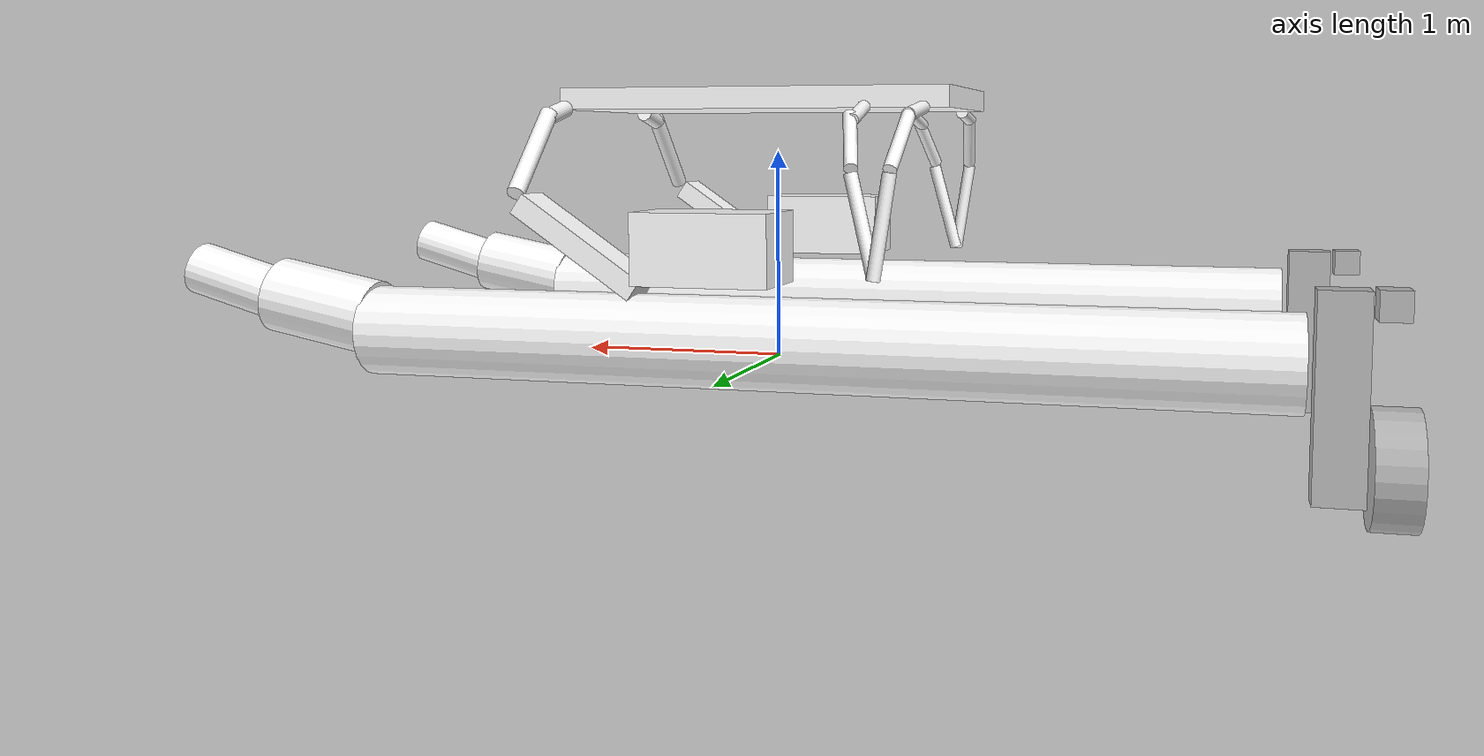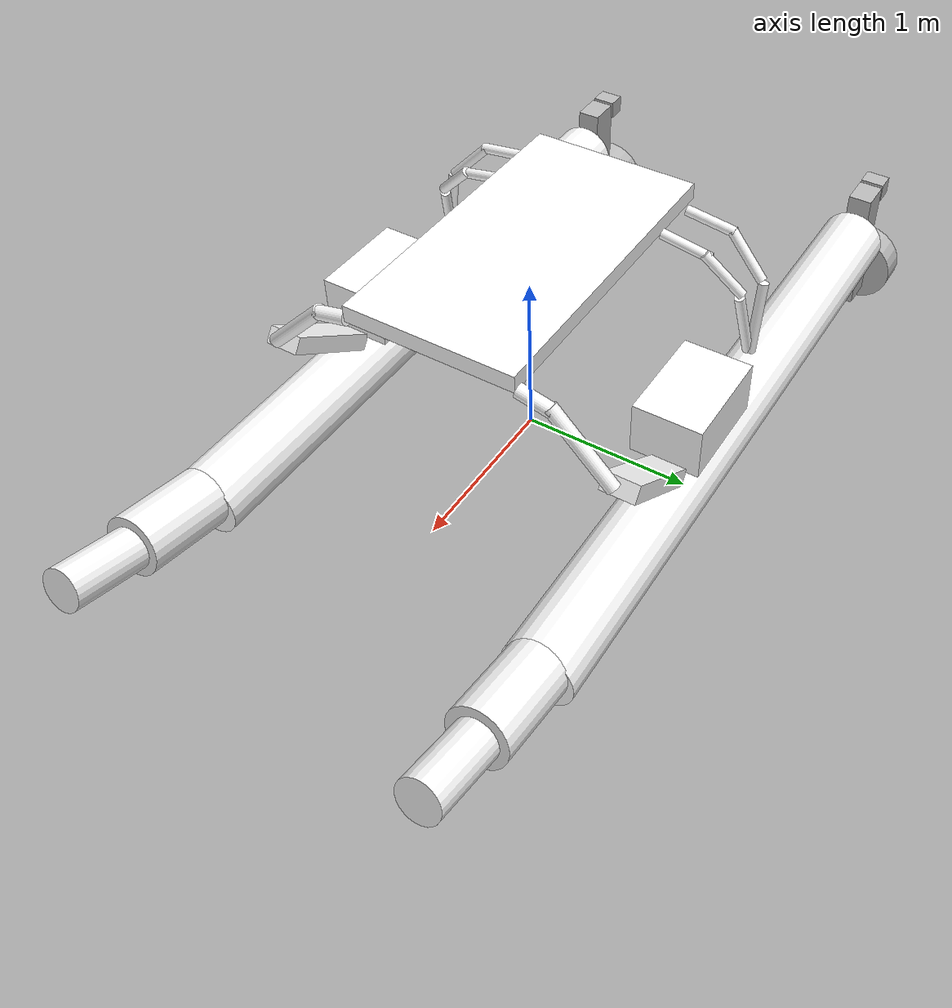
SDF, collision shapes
<?xml version='1.0' encoding='utf-8'?>
<sdf version="1.11">
  <model name="WAM-V">
    <link name="wamv/base_link">
      <inertial>
        <pose>0 0 0.1242290748898679 0 0 0</pose>
        <mass>227</mass>
        <inertia>
          <ixx>181.419798421439</ixx>
          <ixy>0</ixy>
          <ixz>0</ixz>
          <iyy>408.20313175477253</iyy>
          <iyz>0</iyz>
          <izz>495.03666666666658</izz>
        </inertia>
      </inertial>
      <collision name="wamv/base_link_fixed_joint_lump__left_float_collision">
        <pose>-0.40000000000000002 1.03 0.20000000000000001 0 1.5707963267948966 0</pose>
        <geometry>
          <cylinder>
            <length>4</length>
            <radius>0.20000000000000001</radius>
          </cylinder>
        </geometry>
      </collision>
      <collision name="wamv/base_link_fixed_joint_lump__left_mid_float_collision_1">
        <pose>1.8500000000000001 1.03 0.29999999999999999 0 1.3799999999999997 0</pose>
        <geometry>
          <cylinder>
            <length>0.5</length>
            <radius>0.17000000000000001</radius>
          </cylinder>
        </geometry>
      </collision>
      <collision name="wamv/base_link_fixed_joint_lump__left_front_float_collision_2">
        <pose>2.2999999999999998 1.03 0.40000000000000002 0 1.3 0</pose>
        <geometry>
          <cylinder>
            <length>0.45000000000000001</length>
            <radius>0.12</radius>
          </cylinder>
        </geometry>
      </collision>
      <collision name="wamv/base_link_fixed_joint_lump__front_left_beam_lower_collision_3">
        <pose>0.90000000000000002 0.84999999999999998 1 0.78000000000000003 0 0</pose>
        <geometry>
          <cylinder>
            <length>0.5</length>
            <radius>0.040000000000000001</radius>
          </cylinder>
        </geometry>
      </collision>
      <collision name="wamv/base_link_fixed_joint_lump__front_left_beam_upper_collision_4">
        <pose>0.90000000000000002 0.59999999999999998 1.1799999999999999 1.3500000000000001 0 0</pose>
        <geometry>
          <cylinder>
            <length>0.20000000000000001</length>
            <radius>0.040000000000000001</radius>
          </cylinder>
        </geometry>
      </collision>
      <collision name="wamv/base_link_fixed_joint_lump__mid_left_beam_lower_collision_5">
        <pose>-0.65000000000000002 0.98999999999999999 0.69999999999999996 0.099999999999999978 0.25000000000000006 0</pose>
        <geometry>
          <cylinder>
            <length>0.45000000000000001</length>
            <radius>0.029999999999999999</radius>
          </cylinder>
        </geometry>
      </collision>
      <collision name="wamv/base_link_fixed_joint_lump__mid_left_beam_medium_collision_6">
        <pose>-0.56999999999999995 0.87 1.05 0.75000000000000033 0.25000000000000017 0</pose>
        <geometry>
          <cylinder>
            <length>0.32000000000000001</length>
            <radius>0.029999999999999999</radius>
          </cylinder>
        </geometry>
      </collision>
      <collision name="wamv/base_link_fixed_joint_lump__mid_left_beam_upper_collision_7">
        <pose>-0.55000000000000004 0.65000000000000002 1.1699999999999999 1.3500000000000001 0.25000000000000011 0</pose>
        <geometry>
          <cylinder>
            <length>0.29999999999999999</length>
            <radius>0.029999999999999999</radius>
          </cylinder>
        </geometry>
      </collision>
      <collision name="wamv/base_link_fixed_joint_lump__rear_left_beam_lower_collision_8">
        <pose>-0.73999999999999999 1.03 0.69999999999999996 0 -0.14999999999999999 0</pose>
        <geometry>
          <cylinder>
            <length>0.45000000000000001</length>
            <radius>0.029999999999999999</radius>
          </cylinder>
        </geometry>
      </collision>
      <collision name="wamv/base_link_fixed_joint_lump__rear_left_beam_medium_collision_9">
        <pose>-0.79000000000000004 0.91000000000000003 1.05 0.75000000000000022 -0.14999999999999999 -1.4035390109491176e-17</pose>
        <geometry>
          <cylinder>
            <length>0.32000000000000001</length>
            <radius>0.029999999999999999</radius>
          </cylinder>
        </geometry>
      </collision>
      <collision name="wamv/base_link_fixed_joint_lump__rear_left_beam_upper_collision_10">
        <pose>-0.81000000000000005 0.67000000000000004 1.1799999999999999 1.45 -0.14999999999999999 0</pose>
        <geometry>
          <cylinder>
            <length>0.29999999999999999</length>
            <radius>0.029999999999999999</radius>
          </cylinder>
        </geometry>
      </collision>
      <collision name="wamv/base_link_fixed_joint_lump__left_joint_collision_11">
        <pose>0.57999999999999996 1.03 0.59999999999999998 0 -0.59999999999999987 0</pose>
        <geometry>
          <box>
            <size>0.65000000000000002 0.20000000000000001 0.10000000000000001</size>
          </box>
        </geometry>
      </collision>
      <collision name="wamv/base_link_fixed_joint_lump__right_float_collision_12">
        <pose>-0.40000000000000002 -1.03 0.20000000000000001 0 1.5707963267948966 0</pose>
        <geometry>
          <cylinder>
            <length>4</length>
            <radius>0.20000000000000001</radius>
          </cylinder>
        </geometry>
      </collision>
      <collision name="wamv/base_link_fixed_joint_lump__right_mid_float_collision_13">
        <pose>1.8500000000000001 -1.03 0.29999999999999999 0 1.3799999999999997 0</pose>
        <geometry>
          <cylinder>
            <length>0.5</length>
            <radius>0.17000000000000001</radius>
          </cylinder>
        </geometry>
      </collision>
      <collision name="wamv/base_link_fixed_joint_lump__right_front_float_collision_14">
        <pose>2.2999999999999998 -1.03 0.40000000000000002 0 1.3 0</pose>
        <geometry>
          <cylinder>
            <length>0.45000000000000001</length>
            <radius>0.12</radius>
          </cylinder>
        </geometry>
      </collision>
      <collision name="wamv/base_link_fixed_joint_lump__front_right_beam_lower_collision_15">
        <pose>0.90000000000000002 -0.84999999999999998 1 -0.78000000000000003 0 0</pose>
        <geometry>
          <cylinder>
            <length>0.5</length>
            <radius>0.040000000000000001</radius>
          </cylinder>
        </geometry>
      </collision>
      <collision name="wamv/base_link_fixed_joint_lump__front_right_beam_upper_collision_16">
        <pose>0.90000000000000002 -0.59999999999999998 1.1799999999999999 -1.3500000000000001 0 0</pose>
        <geometry>
          <cylinder>
            <length>0.20000000000000001</length>
            <radius>0.040000000000000001</radius>
          </cylinder>
        </geometry>
      </collision>
      <collision name="wamv/base_link_fixed_joint_lump__mid_right_beam_lower_collision_17">
        <pose>-0.65000000000000002 -0.98999999999999999 0.69999999999999996 -0.099999999999999978 0.25000000000000006 0</pose>
        <geometry>
          <cylinder>
            <length>0.45000000000000001</length>
            <radius>0.029999999999999999</radius>
          </cylinder>
        </geometry>
      </collision>
      <collision name="wamv/base_link_fixed_joint_lump__mid_right_beam_medium_collision_18">
        <pose>-0.56999999999999995 -0.87 1.05 -0.75000000000000033 0.25000000000000017 0</pose>
        <geometry>
          <cylinder>
            <length>0.32000000000000001</length>
            <radius>0.029999999999999999</radius>
          </cylinder>
        </geometry>
      </collision>
      <collision name="wamv/base_link_fixed_joint_lump__mid_right_beam_upper_collision_19">
        <pose>-0.55000000000000004 -0.65000000000000002 1.1699999999999999 -1.3500000000000001 0.25000000000000011 0</pose>
        <geometry>
          <cylinder>
            <length>0.29999999999999999</length>
            <radius>0.029999999999999999</radius>
          </cylinder>
        </geometry>
      </collision>
      <collision name="wamv/base_link_fixed_joint_lump__rear_right_beam_lower_collision_20">
        <pose>-0.73999999999999999 -1.03 0.69999999999999996 0 -0.14999999999999999 0</pose>
        <geometry>
          <cylinder>
            <length>0.45000000000000001</length>
            <radius>0.029999999999999999</radius>
          </cylinder>
        </geometry>
      </collision>
      <collision name="wamv/base_link_fixed_joint_lump__rear_right_beam_medium_collision_21">
        <pose>-0.79000000000000004 -0.91000000000000003 1.05 -0.75000000000000022 -0.14999999999999999 1.4035390109491176e-17</pose>
        <geometry>
          <cylinder>
            <length>0.32000000000000001</length>
            <radius>0.029999999999999999</radius>
          </cylinder>
        </geometry>
      </collision>
      <collision name="wamv/base_link_fixed_joint_lump__rear_right_beam_upper_collision_22">
        <pose>-0.81000000000000005 -0.67000000000000004 1.1799999999999999 -1.45 -0.14999999999999999 0</pose>
        <geometry>
          <cylinder>
            <length>0.29999999999999999</length>
            <radius>0.029999999999999999</radius>
          </cylinder>
        </geometry>
      </collision>
      <collision name="wamv/base_link_fixed_joint_lump__right_joint_collision_23">
        <pose>0.57999999999999996 -1.03 0.59999999999999998 0 -0.59999999999999987 0</pose>
        <geometry>
          <box>
            <size>0.65000000000000002 0.20000000000000001 0.10000000000000001</size>
          </box>
        </geometry>
      </collision>
      <collision name="wamv/base_link_fixed_joint_lump__top_base_collision_24">
        <pose>0 0 1.25 0 0 0</pose>
        <geometry>
          <box>
            <size>1.8500000000000001 1 0.10000000000000001</size>
          </box>
        </geometry>
      </collision>
      <collision name="wamv/base_link_fixed_joint_lump__left_battery_collision_collision_25">
        <pose>0 1 0.59999999999999998 0 0 0</pose>
        <geometry>
          <box>
            <size>0.59999999999999998 0.40000000000000002 0.31</size>
          </box>
        </geometry>
      </collision>
      <collision name="wamv/base_link_fixed_joint_lump__right_battery_collision_collision_26">
        <pose>0 -1 0.59999999999999998 0 0 0</pose>
        <geometry>
          <box>
            <size>0.59999999999999998 0.40000000000000002 0.31</size>
          </box>
        </geometry>
      </collision>
      <visual name="wamv/base_link_visual">
        <pose>0 0 0 0 0 0</pose>
        <geometry>
          <mesh>
            <scale>1 1 1</scale>
            <uri>model://wamv_description/models/WAM-V-Base/mesh/WAM-V-Base.dae</uri>
          </mesh>
        </geometry>
        <material>
          <diffuse>1 1 1 1</diffuse>
          <specular>1 1 1 1</specular>
          <pbr>
            <metal>
              <albedo_map>model://wamv_description/models/WAM-V-Base/mesh/WAM-V_Albedo.png</albedo_map>
              <normal_map>model://wamv_description/models/WAM-V-Base/mesh/WAM-V_Normal.png</normal_map>
              <roughness_map>model://wamv_description/models/WAM-V-Base/mesh/WAM-V_Roughness.png</roughness_map>
              <metalness_map>model://wamv_description/models/WAM-V-Base/mesh/WAM-V_Metalness.png</metalness_map>
            </metal>
          </pbr>
        </material>
      </visual>
      <visual name="wamv/base_link_fixed_joint_lump__wamv/left_battery_link_visual_1">
        <pose>0 -0.03000000000000003 0 0 0 0</pose>
        <geometry>
          <mesh>
            <scale>1 1 1</scale>
            <uri>model://vrx_gazebo/models/battery/mesh/battery.dae</uri>
          </mesh>
        </geometry>
        <material>
          <diffuse>1 1 1 1</diffuse>
          <specular>1 1 1 1</specular>
          <pbr>
            <metal>
              <albedo_map>model://vrx_gazebo/models/battery/mesh/battery_Albedo.png</albedo_map>
              <normal_map>model://vrx_gazebo/models/battery/mesh/battery_Normal.png</normal_map>
              <roughness_map>model://vrx_gazebo/models/battery/mesh/battery_Roughness.png</roughness_map>
              <metalness_map>model://vrx_gazebo/models/battery/mesh/battery_Metalness.png</metalness_map>
            </metal>
          </pbr>
        </material>
      </visual>
      <visual name="wamv/base_link_fixed_joint_lump__wamv/right_battery_link_visual_2">
        <pose>0 -2.0299999999999998 0 0 0 0</pose>
        <geometry>
          <mesh>
            <scale>1 1 1</scale>
            <uri>model://vrx_gazebo/models/battery/mesh/battery.dae</uri>
          </mesh>
        </geometry>
        <material>
          <diffuse>1 1 1 1</diffuse>
          <specular>1 1 1 1</specular>
          <pbr>
            <metal>
              <albedo_map>model://vrx_gazebo/models/battery/mesh/battery_Albedo.png</albedo_map>
              <normal_map>model://vrx_gazebo/models/battery/mesh/battery_Normal.png</normal_map>
              <roughness_map>model://vrx_gazebo/models/battery/mesh/battery_Roughness.png</roughness_map>
              <metalness_map>model://vrx_gazebo/models/battery/mesh/battery_Metalness.png</metalness_map>
            </metal>
          </pbr>
        </material>
      </visual>
      <sensor name="contact_sensor" type="contact">
        <contact>
          <collision>wamv/base_link_fixed_joint_lump__top_base_collision_24</collision>
          <collision>wamv/base_link_fixed_joint_lump__left_float_collision</collision>
          <collision>wamv/base_link_fixed_joint_lump__left_mid_float_collision_1</collision>
          <collision>wamv/base_link_fixed_joint_lump__left_front_float_collision_2</collision>
          <collision>wamv/base_link_fixed_joint_lump__right_float_collision_12</collision>
          <collision>wamv/base_link_fixed_joint_lump__right_mid_float_collision_13</collision>
          <collision>wamv/base_link_fixed_joint_lump__right_front_float_collision_14</collision>
          <topic>/vrx/contacts</topic>
        </contact>
        <always_on>true</always_on>
        <update_rate>5</update_rate>
      </sensor>
    <sensor name="imu_sensor" type="imu"><pose degrees="true">0 0 0 180 0 0</pose><always_on>1</always_on><update_rate>250</update_rate></sensor>
    <sensor name="navsat_sensor" type="navsat">
      <always_on>1</always_on>
      <update_rate>10</update_rate>
      <navsat>
        <position_sensing>
          <horizontal>
            <noise type="gaussian">
              <mean>0.0</mean>
              <stddev>0.000027</stddev>
            </noise>
          </horizontal>
          <vertical>
            <noise type="gaussian">
              <mean>0.0</mean>
              <stddev>4.0</stddev>
            </noise>
          </vertical>
        </position_sensing>
      </navsat>
    </sensor>
  </link>
    <joint name="wamv/left_chassis_engine_joint" type="revolute">
      <pose relative_to="wamv/base_link">-2.3737759999999999 1.0271349999999999 0.31823699999999999 0 0 0</pose>
      <parent>wamv/base_link</parent>
      <child>wamv/left_engine_link</child>
      <axis>
        <xyz>0 0 1</xyz>
        <limit>
          <lower>-3.1415926535897931</lower>
          <upper>3.1415926535897931</upper>
          <effort>10</effort>
          <velocity>10</velocity>
        </limit>
        <dynamics>
          <spring_reference>0</spring_reference>
          <spring_stiffness>0</spring_stiffness>
        </dynamics>
      </axis>
    </joint>
    <link name="wamv/left_engine_link">
      <pose relative_to="wamv/left_chassis_engine_joint">0 0 0 0 0 0</pose>
      <inertial>
        <pose>0 0 0 0 0 0</pose>
        <mass>15</mass>
        <inertia>
          <ixx>0.88924499999999995</ixx>
          <ixy>0</ixy>
          <ixz>0</ixz>
          <iyy>0.91112499999999996</iyy>
          <iyz>0</iyz>
          <izz>0.078125</izz>
        </inertia>
      </inertial>
      <collision name="wamv/left_engine_link_fixed_joint_lump__left_engine_vertical_axis_collision_collision">
        <pose>-0.16 0 -0.23999999999999999 0 0 0</pose>
        <geometry>
          <box>
            <size>0.20000000000000001 0.14999999999999999 0.82999999999999996</size>
          </box>
        </geometry>
      </collision>
      <collision name="wamv/left_engine_link_fixed_joint_lump__left_engine_rear_end_collision_collision_1">
        <pose>-0.34000000000000002 0 0.12 0 0 0</pose>
        <geometry>
          <box>
            <size>0.12 0.14999999999999999 0.12</size>
          </box>
        </geometry>
      </collision>
      <visual name="wamv/left_engine_link_visual">
        <pose>0 0 0 0 0 0</pose>
        <geometry>
          <mesh>
            <scale>1 1 1</scale>
            <uri>model://wamv_description/models/engine/mesh/engine.dae</uri>
          </mesh>
        </geometry>
      </visual>
    </link>
    <joint name="wamv/left_engine_propeller_joint" type="revolute">
      <pose relative_to="wamv/left_engine_link">-0.27815600000000001 0 -0.50937100000000002 0 0 0</pose>
      <parent>wamv/left_engine_link</parent>
      <child>wamv/left_propeller_link</child>
      <axis>
        <xyz>1 0 0</xyz>
        <limit>
          <effort>10000</effort>
          <velocity>1000</velocity>
          <lower>-inf</lower>
          <upper>inf</upper>
        </limit>
        <dynamics>
          <damping>0.050000000000000003</damping>
          <friction>0.050000000000000003</friction>
          <spring_reference>0</spring_reference>
          <spring_stiffness>0</spring_stiffness>
        </dynamics>
      </axis>
    </joint>
    <link name="wamv/left_propeller_link">
      <pose relative_to="wamv/left_engine_propeller_joint">0 0 0 0 0 0</pose>
      <inertial>
        <pose>0 0 0 0 0 0</pose>
        <mass>0.5</mass>
        <inertia>
          <ixx>0.0085450000000000005</ixx>
          <ixy>0</ixy>
          <ixz>0</ixz>
          <iyy>0.0085450000000000005</iyy>
          <iyz>0</iyz>
          <izz>0.0144</izz>
        </inertia>
      </inertial>
      <collision name="wamv/left_propeller_link_fixed_joint_lump__left_propeller_collision_collision">
        <pose>-0.080000000000000002 0 0 0 1.5707963267948966 0</pose>
        <geometry>
          <cylinder>
            <length>0.17999999999999999</length>
            <radius>0.23999999999999999</radius>
          </cylinder>
        </geometry>
      </collision>
      <visual name="wamv/left_propeller_link_visual">
        <pose>0 0 0 0 0 0</pose>
        <geometry>
          <mesh>
            <scale>1 1 1</scale>
            <uri>model://wamv_description/models/propeller/mesh/propeller.dae</uri>
          </mesh>
        </geometry>
      </visual>
    </link>
    <joint name="wamv/right_chassis_engine_joint" type="revolute">
      <pose relative_to="wamv/base_link">-2.3737759999999999 -1.0271349999999999 0.31823699999999999 0 0 0</pose>
      <parent>wamv/base_link</parent>
      <child>wamv/right_engine_link</child>
      <axis>
        <xyz>0 0 1</xyz>
        <limit>
          <lower>-3.1415926535897931</lower>
          <upper>3.1415926535897931</upper>
          <effort>10</effort>
          <velocity>10</velocity>
        </limit>
        <dynamics>
          <spring_reference>0</spring_reference>
          <spring_stiffness>0</spring_stiffness>
        </dynamics>
      </axis>
    </joint>
    <link name="wamv/right_engine_link">
      <pose relative_to="wamv/right_chassis_engine_joint">0 0 0 0 0 0</pose>
      <inertial>
        <pose>0 0 0 0 0 0</pose>
        <mass>15</mass>
        <inertia>
          <ixx>0.88924499999999995</ixx>
          <ixy>0</ixy>
          <ixz>0</ixz>
          <iyy>0.91112499999999996</iyy>
          <iyz>0</iyz>
          <izz>0.078125</izz>
        </inertia>
      </inertial>
      <collision name="wamv/right_engine_link_fixed_joint_lump__right_engine_vertical_axis_collision_collision">
        <pose>-0.16 0 -0.23999999999999999 0 0 0</pose>
        <geometry>
          <box>
            <size>0.20000000000000001 0.14999999999999999 0.82999999999999996</size>
          </box>
        </geometry>
      </collision>
      <collision name="wamv/right_engine_link_fixed_joint_lump__right_engine_rear_end_collision_collision_1">
        <pose>-0.34000000000000002 0 0.12 0 0 0</pose>
        <geometry>
          <box>
            <size>0.12 0.14999999999999999 0.12</size>
          </box>
        </geometry>
      </collision>
      <visual name="wamv/right_engine_link_visual">
        <pose>0 0 0 0 0 0</pose>
        <geometry>
          <mesh>
            <scale>1 1 1</scale>
            <uri>model://wamv_description/models/engine/mesh/engine.dae</uri>
          </mesh>
        </geometry>
      </visual>
    </link>
    <joint name="wamv/right_engine_propeller_joint" type="revolute">
      <pose relative_to="wamv/right_engine_link">-0.27815600000000001 0 -0.50937100000000002 0 0 0</pose>
      <parent>wamv/right_engine_link</parent>
      <child>wamv/right_propeller_link</child>
      <axis>
        <xyz>1 0 0</xyz>
        <limit>
          <effort>10000</effort>
          <velocity>1000</velocity>
          <lower>-inf</lower>
          <upper>inf</upper>
        </limit>
        <dynamics>
          <damping>0.050000000000000003</damping>
          <friction>0.050000000000000003</friction>
          <spring_reference>0</spring_reference>
          <spring_stiffness>0</spring_stiffness>
        </dynamics>
      </axis>
    </joint>
    <link name="wamv/right_propeller_link">
      <pose relative_to="wamv/right_engine_propeller_joint">0 0 0 0 0 0</pose>
      <inertial>
        <pose>0 0 0 0 0 0</pose>
        <mass>0.5</mass>
        <inertia>
          <ixx>0.0085450000000000005</ixx>
          <ixy>0</ixy>
          <ixz>0</ixz>
          <iyy>0.0085450000000000005</iyy>
          <iyz>0</iyz>
          <izz>0.0144</izz>
        </inertia>
      </inertial>
      <collision name="wamv/right_propeller_link_fixed_joint_lump__right_propeller_collision_collision">
        <pose>-0.080000000000000002 0 0 0 1.5707963267948966 0</pose>
        <geometry>
          <cylinder>
            <length>0.17999999999999999</length>
            <radius>0.23999999999999999</radius>
          </cylinder>
        </geometry>
      </collision>
      <visual name="wamv/right_propeller_link_visual">
        <pose>0 0 0 0 0 0</pose>
        <geometry>
          <mesh>
            <scale>1 1 1</scale>
            <uri>model://wamv_description/models/propeller/mesh/propeller.dae</uri>
          </mesh>
        </geometry>
      </visual>
    </link>
    <enable_wind>true</enable_wind>
    <plugin name="gz::sim::systems::Thruster" filename="gz-sim-thruster-system">
      <joint_name>wamv/left_engine_propeller_joint</joint_name>
      <thrust_coefficient>0.004422</thrust_coefficient>
      <fluid_density>1000</fluid_density>
      <propeller_diameter>0.2</propeller_diameter>
      <velocity_control>false</velocity_control>
      <max_thrust_cmd>2353.53383667818</max_thrust_cmd>
      <namespace>wamv</namespace>
      <topic>thrusters/left/thrust</topic>
      <name>left</name>
    </plugin>
    <plugin name="gz::sim::systems::JointPositionController" filename="gz-sim-joint-position-controller-system">
      <joint_name>wamv/left_chassis_engine_joint</joint_name>
      <use_velocity_commands>true</use_velocity_commands>
      <topic>wamv/thrusters/left/pos</topic>
      <name>left</name>
    </plugin>
    <plugin name="gz::sim::systems::Thruster" filename="gz-sim-thruster-system">
      <joint_name>wamv/right_engine_propeller_joint</joint_name>
      <thrust_coefficient>0.004422</thrust_coefficient>
      <fluid_density>1000</fluid_density>
      <propeller_diameter>0.2</propeller_diameter>
      <velocity_control>false</velocity_control>
      <max_thrust_cmd>2353.53383667818</max_thrust_cmd>
      <namespace>wamv</namespace>
      <topic>thrusters/right/thrust</topic>
      <name>right</name>
    </plugin>
    <plugin name="gz::sim::systems::JointPositionController" filename="gz-sim-joint-position-controller-system">
      <joint_name>wamv/right_chassis_engine_joint</joint_name>
      <use_velocity_commands>true</use_velocity_commands>
      <topic>wamv/thrusters/right/pos</topic>
      <name>right</name>
    </plugin>
    <plugin name="vrx::Surface" filename="libSurface.so">
      <link_name>wamv/base_link</link_name>
      <hull_length>4.9</hull_length>
      <hull_radius>0.213</hull_radius>
      <fluid_level>0</fluid_level>
      <points>
        <point>0.6 1.03 0</point>
        <point>-1.4 1.03 0</point>
      </points>
      <wavefield>
        <topic>/vrx/wavefield/parameters</topic>
      </wavefield>
    </plugin>
    <plugin name="vrx::Surface" filename="libSurface.so">
      <link_name>wamv/base_link</link_name>
      <hull_length>4.9</hull_length>
      <hull_radius>0.213</hull_radius>
      <fluid_level>0</fluid_level>
      <points>
        <point>0.6 -1.03 0</point>
        <point>-1.4 -1.03 0</point>
      </points>
      <wavefield>
        <topic>/vrx/wavefield/parameters</topic>
      </wavefield>
    </plugin>
    <plugin name="vrx::SimpleHydrodynamics" filename="libSimpleHydrodynamics.so">
      <link_name>wamv/base_link</link_name>
      <xDotU>0.0</xDotU>
      <yDotV>0.0</yDotV>
      <nDotR>0.0</nDotR>
      <xU>100.0</xU>
      <xUU>150.0</xUU>
      <yV>100.0</yV>
      <yVV>100.0</yVV>
      <zW>500.0</zW>
      <kP>300.0</kP>
      <kPP>600.0</kPP>
      <mQ>900.0</mQ>
      <mQQ>900.0</mQQ>
      <nR>800.0</nR>
      <nRR>800.0</nRR>
    </plugin>
    <plugin name="gz::sim::systems::DetachableJoint" filename="gz-sim-detachable-joint-system">
      <parent_link>wamv/base_link</parent_link>
      <child_model>platform</child_model>
      <child_link>dummy_upper</child_link>
      <topic>/vrx/release</topic>
      <suppress_child_warning>true</suppress_child_warning>
    </plugin>
    <plugin name="gz::sim::systems::PosePublisher" filename="libgz-sim-pose-publisher-system.so">
      <publish_link_pose>false</publish_link_pose>
      <publish_sensor_pose>true</publish_sensor_pose>
      <publish_collision_pose>false</publish_collision_pose>
      <publish_visual_pose>false</publish_visual_pose>
      <publish_nested_model_pose>false</publish_nested_model_pose>
      <publish_model_pose>false</publish_model_pose>
      <use_pose_vector_msg>true</use_pose_vector_msg>
      <static_publisher>false</static_publisher>
      <static_update_frequency>1</static_update_frequency>
    </plugin>
    <plugin name="gz::sim::systems::JointStatePublisher" filename="gz-sim-joint-state-publisher-system" />
    <frame name="wamv/left_chasis_battery_joint" attached_to="wamv/base_link">
      <pose>0 1 0.45000000000000001 0 0 0</pose>
    </frame>
    <frame name="wamv/left_battery_link" attached_to="wamv/left_chasis_battery_joint">
      <pose>0 0 0 0 0 0</pose>
    </frame>
    <frame name="wamv/right_chasis_battery_joint" attached_to="wamv/base_link">
      <pose>0 -1 0.45000000000000001 0 0 0</pose>
    </frame>
    <frame name="wamv/right_battery_link" attached_to="wamv/right_chasis_battery_joint">
      <pose>0 0 0 0 0 0</pose>
    </frame>
  <plugin filename="libArduPilotPlugin.so" name="ArduPilotPlugin"><fdm_addr>127.0.0.1</fdm_addr><fdm_port_in>9100</fdm_port_in><connectionTimeoutMaxCount>5</connectionTimeoutMaxCount><lock_step>1</lock_step><modelXYZToAirplaneXForwardZDown degrees="true">0 0 0 180 0 0</modelXYZToAirplaneXForwardZDown><gazeboXYZToNED degrees="true">0 0 0 180 0 90</gazeboXYZToNED><imuName>wamv/base_link::imu_sensor</imuName>    <control channel="0">
      <jointName>wamv/left_engine_propeller_joint</jointName>
      <useForce>0</useForce>
      <type>COMMAND</type>
      <cmd_topic>/wamv/thrusters/left/thrust</cmd_topic>
      <rotorVelocitySlowdownSim>1</rotorVelocitySlowdownSim>
      <multiplier>2353.5338</multiplier>
      <offset>-0.5</offset>
      <servo_min>1000</servo_min>
      <servo_max>2000</servo_max>
    </control>
    <control channel="2">
      <jointName>wamv/right_engine_propeller_joint</jointName>
      <useForce>0</useForce>
      <type>COMMAND</type>
      <cmd_topic>/wamv/thrusters/right/thrust</cmd_topic>
      <rotorVelocitySlowdownSim>1</rotorVelocitySlowdownSim>
      <multiplier>2353.5338</multiplier>
      <offset>-0.5</offset>
      <servo_min>1000</servo_min>
      <servo_max>2000</servo_max>
    </control></plugin></model>
</sdf>
